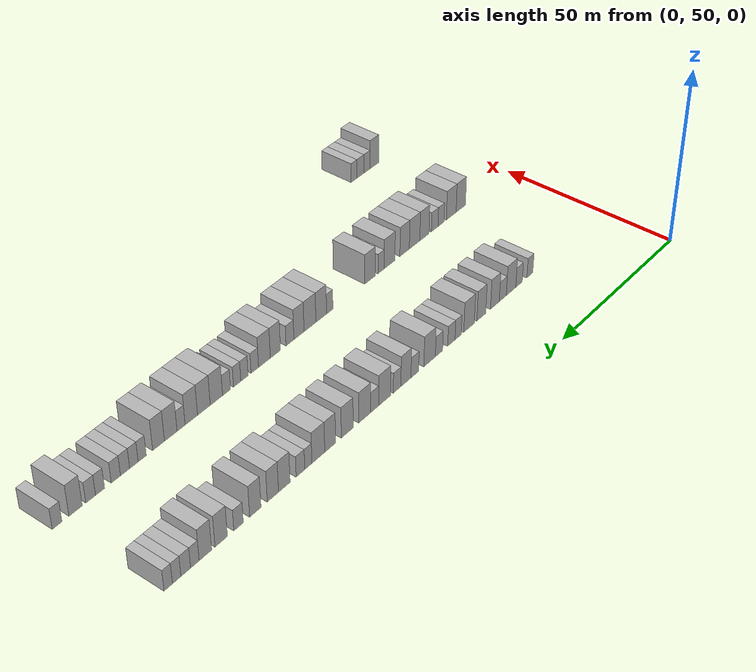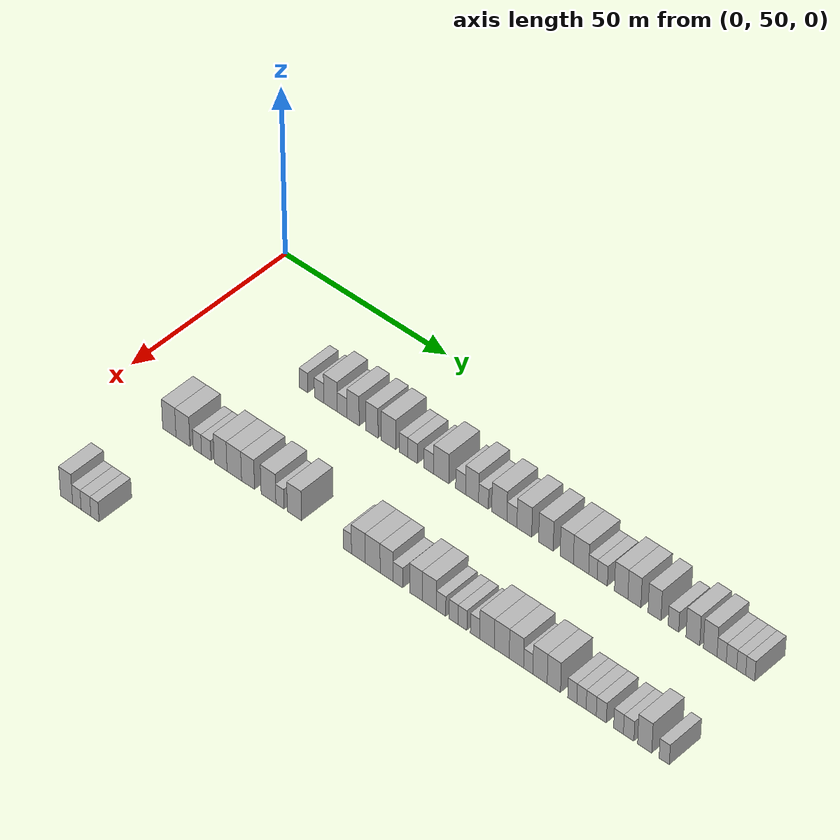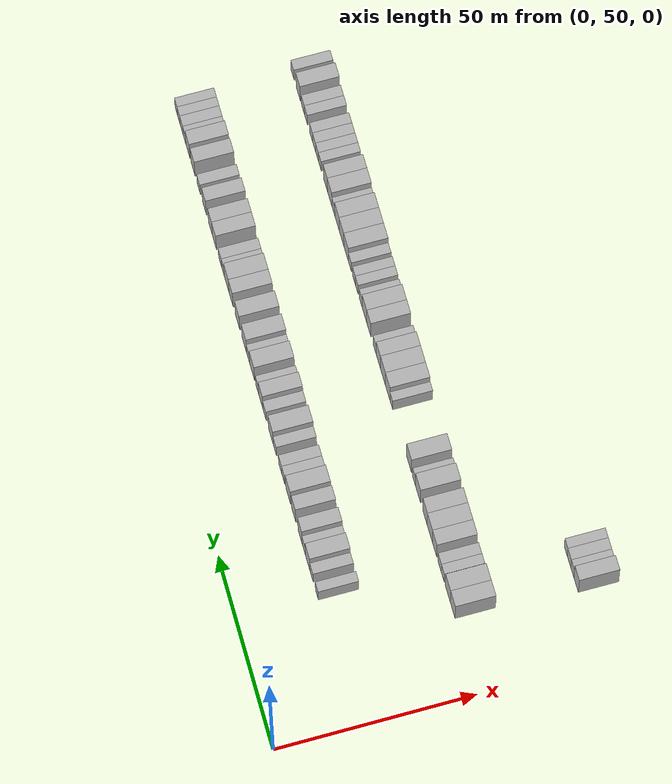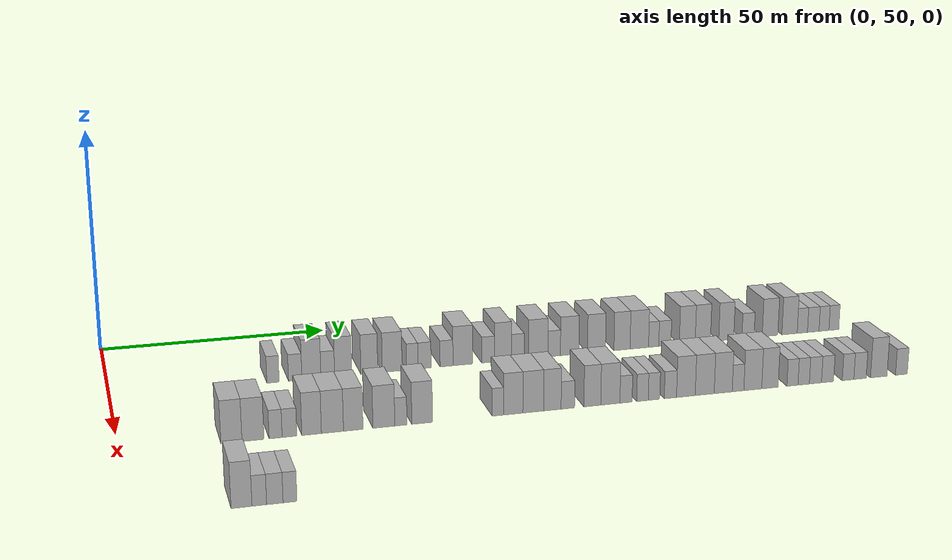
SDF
<sdf version="1.6">
 <world name="default">
  <model name="building_122">
   <static>1</static>
   <pose>25.0000 84.1562 0 0.000000 0.000000 0.000000</pose>
   <link name="link">
    <pose>0 0 3.00 0 0 0</pose>
    <collision name="collision"><geometry><box><size>10.0000 2.6257 6.0000</size></box></geometry></collision>
    <visual name="visual">
     <cast_shadows>0</cast_shadows>
     <geometry><box><size>10.0000 2.6257 6.0000</size></box></geometry>
     <material>
      <script>
       <uri>model://HANNAS_wall/materials/scripts</uri>
       <uri>model://HANNAS_wall/materials/textures</uri>
       <name>vrc/HANNAS_wall</name>
      </script>
     </material>
    </visual>
   </link>
  </model>
  <model name="building_123">
   <static>1</static>
   <pose>25.0000 88.9051 0 0.000000 0.000000 0.000000</pose>
   <link name="link">
    <pose>0 0 3.00 0 0 0</pose>
    <collision name="collision"><geometry><box><size>10.0000 2.8723 6.0000</size></box></geometry></collision>
    <visual name="visual">
     <cast_shadows>0</cast_shadows>
     <geometry><box><size>10.0000 2.8723 6.0000</size></box></geometry>
     <material>
      <script>
       <uri>model://HANNAS_wall/materials/scripts</uri>
       <uri>model://HANNAS_wall/materials/textures</uri>
       <name>vrc/HANNAS_wall</name>
      </script>
     </material>
    </visual>
   </link>
  </model>
  <model name="building_124">
   <static>1</static>
   <pose>25.0000 92.3896 0 0.000000 0.000000 0.000000</pose>
   <link name="link">
    <pose>0 0 4.50 0 0 0</pose>
    <collision name="collision"><geometry><box><size>10.0000 4.0966 9.0000</size></box></geometry></collision>
    <visual name="visual">
     <cast_shadows>0</cast_shadows>
     <geometry><box><size>10.0000 4.0966 9.0000</size></box></geometry>
     <material>
      <script>
       <uri>model://HANNAS_wall/materials/scripts</uri>
       <uri>model://HANNAS_wall/materials/textures</uri>
       <name>vrc/HANNAS_wall</name>
      </script>
     </material>
    </visual>
   </link>
  </model>
  <model name="building_125">
   <static>1</static>
   <pose>25.0000 95.9275 0 0.000000 0.000000 0.000000</pose>
   <link name="link">
    <pose>0 0 3.00 0 0 0</pose>
    <collision name="collision"><geometry><box><size>10.0000 2.9792 6.0000</size></box></geometry></collision>
    <visual name="visual">
     <cast_shadows>0</cast_shadows>
     <geometry><box><size>10.0000 2.9792 6.0000</size></box></geometry>
     <material>
      <script>
       <uri>model://HANNAS_wall/materials/scripts</uri>
       <uri>model://HANNAS_wall/materials/textures</uri>
       <name>vrc/HANNAS_wall</name>
      </script>
     </material>
    </visual>
   </link>
  </model>
  <model name="building_126">
   <static>1</static>
   <pose>25.0000 99.2682 0 0.000000 0.000000 0.000000</pose>
   <link name="link">
    <pose>0 0 4.50 0 0 0</pose>
    <collision name="collision"><geometry><box><size>10.0000 3.7021 9.0000</size></box></geometry></collision>
    <visual name="visual">
     <cast_shadows>0</cast_shadows>
     <geometry><box><size>10.0000 3.7021 9.0000</size></box></geometry>
     <material>
      <script>
       <uri>model://HANNAS_wall/materials/scripts</uri>
       <uri>model://HANNAS_wall/materials/textures</uri>
       <name>vrc/HANNAS_wall</name>
      </script>
     </material>
    </visual>
   </link>
  </model>
  <model name="building_127">
   <static>1</static>
   <pose>25.0000 104.9648 0 0.000000 0.000000 0.000000</pose>
   <link name="link">
    <pose>0 0 4.50 0 0 0</pose>
    <collision name="collision"><geometry><box><size>10.0000 3.6911 9.0000</size></box></geometry></collision>
    <visual name="visual">
     <cast_shadows>0</cast_shadows>
     <geometry><box><size>10.0000 3.6911 9.0000</size></box></geometry>
     <material>
      <script>
       <uri>model://HANNAS_wall/materials/scripts</uri>
       <uri>model://HANNAS_wall/materials/textures</uri>
       <name>vrc/HANNAS_wall</name>
      </script>
     </material>
    </visual>
   </link>
  </model>
  <model name="building_128">
   <static>1</static>
   <pose>25.0000 109.9829 0 0.000000 0.000000 0.000000</pose>
   <link name="link">
    <pose>0 0 4.50 0 0 0</pose>
    <collision name="collision"><geometry><box><size>10.0000 4.3452 9.0000</size></box></geometry></collision>
    <visual name="visual">
     <cast_shadows>0</cast_shadows>
     <geometry><box><size>10.0000 4.3452 9.0000</size></box></geometry>
     <material>
      <script>
       <uri>model://HANNAS_wall/materials/scripts</uri>
       <uri>model://HANNAS_wall/materials/textures</uri>
       <name>vrc/HANNAS_wall</name>
      </script>
     </material>
    </visual>
   </link>
  </model>
  <model name="building_129">
   <static>1</static>
   <pose>25.0000 114.4085 0 0.000000 0.000000 0.000000</pose>
   <link name="link">
    <pose>0 0 3.00 0 0 0</pose>
    <collision name="collision"><geometry><box><size>10.0000 2.5061 6.0000</size></box></geometry></collision>
    <visual name="visual">
     <cast_shadows>0</cast_shadows>
     <geometry><box><size>10.0000 2.5061 6.0000</size></box></geometry>
     <material>
      <script>
       <uri>model://HANNAS_wall/materials/scripts</uri>
       <uri>model://HANNAS_wall/materials/textures</uri>
       <name>vrc/HANNAS_wall</name>
      </script>
     </material>
    </visual>
   </link>
  </model>
  <model name="building_130">
   <static>1</static>
   <pose>25.0000 117.1323 0 0.000000 0.000000 0.000000</pose>
   <link name="link">
    <pose>0 0 3.00 0 0 0</pose>
    <collision name="collision"><geometry><box><size>10.0000 2.9415 6.0000</size></box></geometry></collision>
    <visual name="visual">
     <cast_shadows>0</cast_shadows>
     <geometry><box><size>10.0000 2.9415 6.0000</size></box></geometry>
     <material>
      <script>
       <uri>model://HANNAS_wall/materials/scripts</uri>
       <uri>model://HANNAS_wall/materials/textures</uri>
       <name>vrc/HANNAS_wall</name>
      </script>
     </material>
    </visual>
   </link>
  </model>
  <model name="building_131">
   <static>1</static>
   <pose>25.0000 122.0449 0 0.000000 0.000000 0.000000</pose>
   <link name="link">
    <pose>0 0 3.00 0 0 0</pose>
    <collision name="collision"><geometry><box><size>10.0000 2.8836 6.0000</size></box></geometry></collision>
    <visual name="visual">
     <cast_shadows>0</cast_shadows>
     <geometry><box><size>10.0000 2.8836 6.0000</size></box></geometry>
     <material>
      <script>
       <uri>model://HANNAS_wall/materials/scripts</uri>
       <uri>model://HANNAS_wall/materials/textures</uri>
       <name>vrc/HANNAS_wall</name>
      </script>
     </material>
    </visual>
   </link>
  </model>
  <model name="building_132">
   <static>1</static>
   <pose>25.0000 125.7158 0 0.000000 0.000000 0.000000</pose>
   <link name="link">
    <pose>0 0 4.50 0 0 0</pose>
    <collision name="collision"><geometry><box><size>10.0000 4.4583 9.0000</size></box></geometry></collision>
    <visual name="visual">
     <cast_shadows>0</cast_shadows>
     <geometry><box><size>10.0000 4.4583 9.0000</size></box></geometry>
     <material>
      <script>
       <uri>model://HANNAS_wall/materials/scripts</uri>
       <uri>model://HANNAS_wall/materials/textures</uri>
       <name>vrc/HANNAS_wall</name>
      </script>
     </material>
    </visual>
   </link>
  </model>
  <model name="building_133">
   <static>1</static>
   <pose>25.0000 131.4169 0 0.000000 0.000000 0.000000</pose>
   <link name="link">
    <pose>0 0 3.00 0 0 0</pose>
    <collision name="collision"><geometry><box><size>10.0000 2.9439 6.0000</size></box></geometry></collision>
    <visual name="visual">
     <cast_shadows>0</cast_shadows>
     <geometry><box><size>10.0000 2.9439 6.0000</size></box></geometry>
     <material>
      <script>
       <uri>model://HANNAS_wall/materials/scripts</uri>
       <uri>model://HANNAS_wall/materials/textures</uri>
       <name>vrc/HANNAS_wall</name>
      </script>
     </material>
    </visual>
   </link>
  </model>
  <model name="building_134">
   <static>1</static>
   <pose>25.0000 134.8020 0 0.000000 0.000000 0.000000</pose>
   <link name="link">
    <pose>0 0 4.50 0 0 0</pose>
    <collision name="collision"><geometry><box><size>10.0000 3.8262 9.0000</size></box></geometry></collision>
    <visual name="visual">
     <cast_shadows>0</cast_shadows>
     <geometry><box><size>10.0000 3.8262 9.0000</size></box></geometry>
     <material>
      <script>
       <uri>model://HANNAS_wall/materials/scripts</uri>
       <uri>model://HANNAS_wall/materials/textures</uri>
       <name>vrc/HANNAS_wall</name>
      </script>
     </material>
    </visual>
   </link>
  </model>
  <model name="building_135">
   <static>1</static>
   <pose>25.0000 138.1453 0 0.000000 0.000000 0.000000</pose>
   <link name="link">
    <pose>0 0 3.00 0 0 0</pose>
    <collision name="collision"><geometry><box><size>10.0000 2.8604 6.0000</size></box></geometry></collision>
    <visual name="visual">
     <cast_shadows>0</cast_shadows>
     <geometry><box><size>10.0000 2.8604 6.0000</size></box></geometry>
     <material>
      <script>
       <uri>model://HANNAS_wall/materials/scripts</uri>
       <uri>model://HANNAS_wall/materials/textures</uri>
       <name>vrc/HANNAS_wall</name>
      </script>
     </material>
    </visual>
   </link>
  </model>
  <model name="building_136">
   <static>1</static>
   <pose>25.0000 142.7866 0 0.000000 0.000000 0.000000</pose>
   <link name="link">
    <pose>0 0 4.50 0 0 0</pose>
    <collision name="collision"><geometry><box><size>10.0000 4.4223 9.0000</size></box></geometry></collision>
    <visual name="visual">
     <cast_shadows>0</cast_shadows>
     <geometry><box><size>10.0000 4.4223 9.0000</size></box></geometry>
     <material>
      <script>
       <uri>model://HANNAS_wall/materials/scripts</uri>
       <uri>model://HANNAS_wall/materials/textures</uri>
       <name>vrc/HANNAS_wall</name>
      </script>
     </material>
    </visual>
   </link>
  </model>
  <model name="building_137">
   <static>1</static>
   <pose>25.0000 146.4491 0 0.000000 0.000000 0.000000</pose>
   <link name="link">
    <pose>0 0 3.00 0 0 0</pose>
    <collision name="collision"><geometry><box><size>10.0000 2.9027 6.0000</size></box></geometry></collision>
    <visual name="visual">
     <cast_shadows>0</cast_shadows>
     <geometry><box><size>10.0000 2.9027 6.0000</size></box></geometry>
     <material>
      <script>
       <uri>model://HANNAS_wall/materials/scripts</uri>
       <uri>model://HANNAS_wall/materials/textures</uri>
       <name>vrc/HANNAS_wall</name>
      </script>
     </material>
    </visual>
   </link>
  </model>
  <model name="building_138">
   <static>1</static>
   <pose>25.0000 150.0336 0 0.000000 0.000000 0.000000</pose>
   <link name="link">
    <pose>0 0 4.50 0 0 0</pose>
    <collision name="collision"><geometry><box><size>10.0000 4.2664 9.0000</size></box></geometry></collision>
    <visual name="visual">
     <cast_shadows>0</cast_shadows>
     <geometry><box><size>10.0000 4.2664 9.0000</size></box></geometry>
     <material>
      <script>
       <uri>model://HANNAS_wall/materials/scripts</uri>
       <uri>model://HANNAS_wall/materials/textures</uri>
       <name>vrc/HANNAS_wall</name>
      </script>
     </material>
    </visual>
   </link>
  </model>
  <model name="building_139">
   <static>1</static>
   <pose>25.0000 156.2660 0 0.000000 0.000000 0.000000</pose>
   <link name="link">
    <pose>0 0 4.50 0 0 0</pose>
    <collision name="collision"><geometry><box><size>10.0000 4.1983 9.0000</size></box></geometry></collision>
    <visual name="visual">
     <cast_shadows>0</cast_shadows>
     <geometry><box><size>10.0000 4.1983 9.0000</size></box></geometry>
     <material>
      <script>
       <uri>model://HANNAS_wall/materials/scripts</uri>
       <uri>model://HANNAS_wall/materials/textures</uri>
       <name>vrc/HANNAS_wall</name>
      </script>
     </material>
    </visual>
   </link>
  </model>
  <model name="building_140">
   <static>1</static>
   <pose>25.0000 162.2489 0 0.000000 0.000000 0.000000</pose>
   <link name="link">
    <pose>0 0 4.50 0 0 0</pose>
    <collision name="collision"><geometry><box><size>10.0000 3.7675 9.0000</size></box></geometry></collision>
    <visual name="visual">
     <cast_shadows>0</cast_shadows>
     <geometry><box><size>10.0000 3.7675 9.0000</size></box></geometry>
     <material>
      <script>
       <uri>model://HANNAS_wall/materials/scripts</uri>
       <uri>model://HANNAS_wall/materials/textures</uri>
       <name>vrc/HANNAS_wall</name>
      </script>
     </material>
    </visual>
   </link>
  </model>
  <model name="building_141">
   <static>1</static>
   <pose>25.0000 166.3212 0 0.000000 0.000000 0.000000</pose>
   <link name="link">
    <pose>0 0 4.50 0 0 0</pose>
    <collision name="collision"><geometry><box><size>10.0000 4.3771 9.0000</size></box></geometry></collision>
    <visual name="visual">
     <cast_shadows>0</cast_shadows>
     <geometry><box><size>10.0000 4.3771 9.0000</size></box></geometry>
     <material>
      <script>
       <uri>model://HANNAS_wall/materials/scripts</uri>
       <uri>model://HANNAS_wall/materials/textures</uri>
       <name>vrc/HANNAS_wall</name>
      </script>
     </material>
    </visual>
   </link>
  </model>
  <model name="building_142">
   <static>1</static>
   <pose>25.0000 169.7186 0 0.000000 0.000000 0.000000</pose>
   <link name="link">
    <pose>0 0 3.00 0 0 0</pose>
    <collision name="collision"><geometry><box><size>10.0000 2.4177 6.0000</size></box></geometry></collision>
    <visual name="visual">
     <cast_shadows>0</cast_shadows>
     <geometry><box><size>10.0000 2.4177 6.0000</size></box></geometry>
     <material>
      <script>
       <uri>model://HANNAS_wall/materials/scripts</uri>
       <uri>model://HANNAS_wall/materials/textures</uri>
       <name>vrc/HANNAS_wall</name>
      </script>
     </material>
    </visual>
   </link>
  </model>
  <model name="building_143">
   <static>1</static>
   <pose>25.0000 172.3714 0 0.000000 0.000000 0.000000</pose>
   <link name="link">
    <pose>0 0 3.00 0 0 0</pose>
    <collision name="collision"><geometry><box><size>10.0000 2.8878 6.0000</size></box></geometry></collision>
    <visual name="visual">
     <cast_shadows>0</cast_shadows>
     <geometry><box><size>10.0000 2.8878 6.0000</size></box></geometry>
     <material>
      <script>
       <uri>model://HANNAS_wall/materials/scripts</uri>
       <uri>model://HANNAS_wall/materials/textures</uri>
       <name>vrc/HANNAS_wall</name>
      </script>
     </material>
    </visual>
   </link>
  </model>
  <model name="building_144">
   <static>1</static>
   <pose>25.0000 177.7145 0 0.000000 0.000000 0.000000</pose>
   <link name="link">
    <pose>0 0 4.50 0 0 0</pose>
    <collision name="collision"><geometry><box><size>10.0000 3.7985 9.0000</size></box></geometry></collision>
    <visual name="visual">
     <cast_shadows>0</cast_shadows>
     <geometry><box><size>10.0000 3.7985 9.0000</size></box></geometry>
     <material>
      <script>
       <uri>model://HANNAS_wall/materials/scripts</uri>
       <uri>model://HANNAS_wall/materials/textures</uri>
       <name>vrc/HANNAS_wall</name>
      </script>
     </material>
    </visual>
   </link>
  </model>
  <model name="building_145">
   <static>1</static>
   <pose>25.0000 181.4431 0 0.000000 0.000000 0.000000</pose>
   <link name="link">
    <pose>0 0 4.50 0 0 0</pose>
    <collision name="collision"><geometry><box><size>10.0000 3.6586 9.0000</size></box></geometry></collision>
    <visual name="visual">
     <cast_shadows>0</cast_shadows>
     <geometry><box><size>10.0000 3.6586 9.0000</size></box></geometry>
     <material>
      <script>
       <uri>model://HANNAS_wall/materials/scripts</uri>
       <uri>model://HANNAS_wall/materials/textures</uri>
       <name>vrc/HANNAS_wall</name>
      </script>
     </material>
    </visual>
   </link>
  </model>
  <model name="building_146">
   <static>1</static>
   <pose>25.0000 187.0844 0 0.000000 0.000000 0.000000</pose>
   <link name="link">
    <pose>0 0 4.50 0 0 0</pose>
    <collision name="collision"><geometry><box><size>10.0000 3.6240 9.0000</size></box></geometry></collision>
    <visual name="visual">
     <cast_shadows>0</cast_shadows>
     <geometry><box><size>10.0000 3.6240 9.0000</size></box></geometry>
     <material>
      <script>
       <uri>model://HANNAS_wall/materials/scripts</uri>
       <uri>model://HANNAS_wall/materials/textures</uri>
       <name>vrc/HANNAS_wall</name>
      </script>
     </material>
    </visual>
   </link>
  </model>
  <model name="building_147">
   <static>1</static>
   <pose>25.0000 192.3741 0 0.000000 0.000000 0.000000</pose>
   <link name="link">
    <pose>0 0 3.00 0 0 0</pose>
    <collision name="collision"><geometry><box><size>10.0000 2.9554 6.0000</size></box></geometry></collision>
    <visual name="visual">
     <cast_shadows>0</cast_shadows>
     <geometry><box><size>10.0000 2.9554 6.0000</size></box></geometry>
     <material>
      <script>
       <uri>model://HANNAS_wall/materials/scripts</uri>
       <uri>model://HANNAS_wall/materials/textures</uri>
       <name>vrc/HANNAS_wall</name>
      </script>
     </material>
    </visual>
   </link>
  </model>
  <model name="building_148">
   <static>1</static>
   <pose>25.0000 197.7611 0 0.000000 0.000000 0.000000</pose>
   <link name="link">
    <pose>0 0 4.50 0 0 0</pose>
    <collision name="collision"><geometry><box><size>10.0000 3.8187 9.0000</size></box></geometry></collision>
    <visual name="visual">
     <cast_shadows>0</cast_shadows>
     <geometry><box><size>10.0000 3.8187 9.0000</size></box></geometry>
     <material>
      <script>
       <uri>model://HANNAS_wall/materials/scripts</uri>
       <uri>model://HANNAS_wall/materials/textures</uri>
       <name>vrc/HANNAS_wall</name>
      </script>
     </material>
    </visual>
   </link>
  </model>
  <model name="building_149">
   <static>1</static>
   <pose>25.0000 202.5559 0 0.000000 0.000000 0.000000</pose>
   <link name="link">
    <pose>0 0 4.50 0 0 0</pose>
    <collision name="collision"><geometry><box><size>10.0000 3.7707 9.0000</size></box></geometry></collision>
    <visual name="visual">
     <cast_shadows>0</cast_shadows>
     <geometry><box><size>10.0000 3.7707 9.0000</size></box></geometry>
     <material>
      <script>
       <uri>model://HANNAS_wall/materials/scripts</uri>
       <uri>model://HANNAS_wall/materials/textures</uri>
       <name>vrc/HANNAS_wall</name>
      </script>
     </material>
    </visual>
   </link>
  </model>
  <model name="building_150">
   <static>1</static>
   <pose>25.0000 205.7154 0 0.000000 0.000000 0.000000</pose>
   <link name="link">
    <pose>0 0 3.00 0 0 0</pose>
    <collision name="collision"><geometry><box><size>10.0000 2.5484 6.0000</size></box></geometry></collision>
    <visual name="visual">
     <cast_shadows>0</cast_shadows>
     <geometry><box><size>10.0000 2.5484 6.0000</size></box></geometry>
     <material>
      <script>
       <uri>model://HANNAS_wall/materials/scripts</uri>
       <uri>model://HANNAS_wall/materials/textures</uri>
       <name>vrc/HANNAS_wall</name>
      </script>
     </material>
    </visual>
   </link>
  </model>
  <model name="building_151">
   <static>1</static>
   <pose>25.0000 208.4205 0 0.000000 0.000000 0.000000</pose>
   <link name="link">
    <pose>0 0 3.00 0 0 0</pose>
    <collision name="collision"><geometry><box><size>10.0000 2.8617 6.0000</size></box></geometry></collision>
    <visual name="visual">
     <cast_shadows>0</cast_shadows>
     <geometry><box><size>10.0000 2.8617 6.0000</size></box></geometry>
     <material>
      <script>
       <uri>model://HANNAS_wall/materials/scripts</uri>
       <uri>model://HANNAS_wall/materials/textures</uri>
       <name>vrc/HANNAS_wall</name>
      </script>
     </material>
    </visual>
   </link>
  </model>
  <model name="building_152">
   <static>1</static>
   <pose>25.0000 211.0842 0 0.000000 0.000000 0.000000</pose>
   <link name="link">
    <pose>0 0 3.00 0 0 0</pose>
    <collision name="collision"><geometry><box><size>10.0000 2.4657 6.0000</size></box></geometry></collision>
    <visual name="visual">
     <cast_shadows>0</cast_shadows>
     <geometry><box><size>10.0000 2.4657 6.0000</size></box></geometry>
     <material>
      <script>
       <uri>model://HANNAS_wall/materials/scripts</uri>
       <uri>model://HANNAS_wall/materials/textures</uri>
       <name>vrc/HANNAS_wall</name>
      </script>
     </material>
    </visual>
   </link>
  </model>
  <model name="building_153">
   <static>1</static>
   <pose>25.0000 213.5490 0 0.000000 0.000000 0.000000</pose>
   <link name="link">
    <pose>0 0 3.00 0 0 0</pose>
    <collision name="collision"><geometry><box><size>10.0000 2.4639 6.0000</size></box></geometry></collision>
    <visual name="visual">
     <cast_shadows>0</cast_shadows>
     <geometry><box><size>10.0000 2.4639 6.0000</size></box></geometry>
     <material>
      <script>
       <uri>model://HANNAS_wall/materials/scripts</uri>
       <uri>model://HANNAS_wall/materials/textures</uri>
       <name>vrc/HANNAS_wall</name>
      </script>
     </material>
    </visual>
   </link>
  </model>
  <model name="building_354">
   <static>1</static>
   <pose>55.0000 71.6878 0 0.000000 0.000000 0.000000</pose>
   <link name="link">
    <pose>0 0 4.50 0 0 0</pose>
    <collision name="collision"><geometry><box><size>10.0000 4.1245 9.0000</size></box></geometry></collision>
    <visual name="visual">
     <cast_shadows>0</cast_shadows>
     <geometry><box><size>10.0000 4.1245 9.0000</size></box></geometry>
     <material>
      <script>
       <uri>model://HANNAS_wall/materials/scripts</uri>
       <uri>model://HANNAS_wall/materials/textures</uri>
       <name>vrc/HANNAS_wall</name>
      </script>
     </material>
    </visual>
   </link>
  </model>
  <model name="building_355">
   <static>1</static>
   <pose>55.0000 75.9134 0 0.000000 0.000000 0.000000</pose>
   <link name="link">
    <pose>0 0 4.50 0 0 0</pose>
    <collision name="collision"><geometry><box><size>10.0000 4.3267 9.0000</size></box></geometry></collision>
    <visual name="visual">
     <cast_shadows>0</cast_shadows>
     <geometry><box><size>10.0000 4.3267 9.0000</size></box></geometry>
     <material>
      <script>
       <uri>model://HANNAS_wall/materials/scripts</uri>
       <uri>model://HANNAS_wall/materials/textures</uri>
       <name>vrc/HANNAS_wall</name>
      </script>
     </material>
    </visual>
   </link>
  </model>
  <model name="building_356">
   <static>1</static>
   <pose>55.0000 80.3630 0 0.000000 0.000000 0.000000</pose>
   <link name="link">
    <pose>0 0 3.00 0 0 0</pose>
    <collision name="collision"><geometry><box><size>10.0000 2.5725 6.0000</size></box></geometry></collision>
    <visual name="visual">
     <cast_shadows>0</cast_shadows>
     <geometry><box><size>10.0000 2.5725 6.0000</size></box></geometry>
     <material>
      <script>
       <uri>model://HANNAS_wall/materials/scripts</uri>
       <uri>model://HANNAS_wall/materials/textures</uri>
       <name>vrc/HANNAS_wall</name>
      </script>
     </material>
    </visual>
   </link>
  </model>
  <model name="building_357">
   <static>1</static>
   <pose>55.0000 83.1028 0 0.000000 0.000000 0.000000</pose>
   <link name="link">
    <pose>0 0 3.00 0 0 0</pose>
    <collision name="collision"><geometry><box><size>10.0000 2.9072 6.0000</size></box></geometry></collision>
    <visual name="visual">
     <cast_shadows>0</cast_shadows>
     <geometry><box><size>10.0000 2.9072 6.0000</size></box></geometry>
     <material>
      <script>
       <uri>model://HANNAS_wall/materials/scripts</uri>
       <uri>model://HANNAS_wall/materials/textures</uri>
       <name>vrc/HANNAS_wall</name>
      </script>
     </material>
    </visual>
   </link>
  </model>
  <model name="building_358">
   <static>1</static>
   <pose>55.0000 87.5106 0 0.000000 0.000000 0.000000</pose>
   <link name="link">
    <pose>0 0 4.50 0 0 0</pose>
    <collision name="collision"><geometry><box><size>10.0000 3.9083 9.0000</size></box></geometry></collision>
    <visual name="visual">
     <cast_shadows>0</cast_shadows>
     <geometry><box><size>10.0000 3.9083 9.0000</size></box></geometry>
     <material>
      <script>
       <uri>model://HANNAS_wall/materials/scripts</uri>
       <uri>model://HANNAS_wall/materials/textures</uri>
       <name>vrc/HANNAS_wall</name>
      </script>
     </material>
    </visual>
   </link>
  </model>
  <model name="building_359">
   <static>1</static>
   <pose>55.0000 91.6807 0 0.000000 0.000000 0.000000</pose>
   <link name="link">
    <pose>0 0 4.50 0 0 0</pose>
    <collision name="collision"><geometry><box><size>10.0000 4.4318 9.0000</size></box></geometry></collision>
    <visual name="visual">
     <cast_shadows>0</cast_shadows>
     <geometry><box><size>10.0000 4.4318 9.0000</size></box></geometry>
     <material>
      <script>
       <uri>model://HANNAS_wall/materials/scripts</uri>
       <uri>model://HANNAS_wall/materials/textures</uri>
       <name>vrc/HANNAS_wall</name>
      </script>
     </material>
    </visual>
   </link>
  </model>
  <model name="building_360">
   <static>1</static>
   <pose>55.0000 95.8655 0 0.000000 0.000000 0.000000</pose>
   <link name="link">
    <pose>0 0 4.50 0 0 0</pose>
    <collision name="collision"><geometry><box><size>10.0000 3.9377 9.0000</size></box></geometry></collision>
    <visual name="visual">
     <cast_shadows>0</cast_shadows>
     <geometry><box><size>10.0000 3.9377 9.0000</size></box></geometry>
     <material>
      <script>
       <uri>model://HANNAS_wall/materials/scripts</uri>
       <uri>model://HANNAS_wall/materials/textures</uri>
       <name>vrc/HANNAS_wall</name>
      </script>
     </material>
    </visual>
   </link>
  </model>
  <model name="building_361">
   <static>1</static>
   <pose>55.0000 102.0599 0 0.000000 0.000000 0.000000</pose>
   <link name="link">
    <pose>0 0 4.50 0 0 0</pose>
    <collision name="collision"><geometry><box><size>10.0000 4.4511 9.0000</size></box></geometry></collision>
    <visual name="visual">
     <cast_shadows>0</cast_shadows>
     <geometry><box><size>10.0000 4.4511 9.0000</size></box></geometry>
     <material>
      <script>
       <uri>model://HANNAS_wall/materials/scripts</uri>
       <uri>model://HANNAS_wall/materials/textures</uri>
       <name>vrc/HANNAS_wall</name>
      </script>
     </material>
    </visual>
   </link>
  </model>
  <model name="building_362">
   <static>1</static>
   <pose>55.0000 105.5211 0 0.000000 0.000000 0.000000</pose>
   <link name="link">
    <pose>0 0 3.00 0 0 0</pose>
    <collision name="collision"><geometry><box><size>10.0000 2.4714 6.0000</size></box></geometry></collision>
    <visual name="visual">
     <cast_shadows>0</cast_shadows>
     <geometry><box><size>10.0000 2.4714 6.0000</size></box></geometry>
     <material>
      <script>
       <uri>model://HANNAS_wall/materials/scripts</uri>
       <uri>model://HANNAS_wall/materials/textures</uri>
       <name>vrc/HANNAS_wall</name>
      </script>
     </material>
    </visual>
   </link>
  </model>
  <model name="building_363">
   <static>1</static>
   <pose>55.0000 109.8866 0 0.000000 0.000000 0.000000</pose>
   <link name="link">
    <pose>0 0 4.50 0 0 0</pose>
    <collision name="collision"><geometry><box><size>10.0000 4.2597 9.0000</size></box></geometry></collision>
    <visual name="visual">
     <cast_shadows>0</cast_shadows>
     <geometry><box><size>10.0000 4.2597 9.0000</size></box></geometry>
     <material>
      <script>
       <uri>model://HANNAS_wall/materials/scripts</uri>
       <uri>model://HANNAS_wall/materials/textures</uri>
       <name>vrc/HANNAS_wall</name>
      </script>
     </material>
    </visual>
   </link>
  </model>
  <model name="building_364">
   <static>1</static>
   <pose>55.0000 125.6384 0 0.000000 0.000000 0.000000</pose>
   <link name="link">
    <pose>0 0 3.00 0 0 0</pose>
    <collision name="collision"><geometry><box><size>10.0000 2.4146 6.0000</size></box></geometry></collision>
    <visual name="visual">
     <cast_shadows>0</cast_shadows>
     <geometry><box><size>10.0000 2.4146 6.0000</size></box></geometry>
     <material>
      <script>
       <uri>model://HANNAS_wall/materials/scripts</uri>
       <uri>model://HANNAS_wall/materials/textures</uri>
       <name>vrc/HANNAS_wall</name>
      </script>
     </material>
    </visual>
   </link>
  </model>
  <model name="building_365">
   <static>1</static>
   <pose>55.0000 128.8602 0 0.000000 0.000000 0.000000</pose>
   <link name="link">
    <pose>0 0 4.50 0 0 0</pose>
    <collision name="collision"><geometry><box><size>10.0000 4.0290 9.0000</size></box></geometry></collision>
    <visual name="visual">
     <cast_shadows>0</cast_shadows>
     <geometry><box><size>10.0000 4.0290 9.0000</size></box></geometry>
     <material>
      <script>
       <uri>model://HANNAS_wall/materials/scripts</uri>
       <uri>model://HANNAS_wall/materials/textures</uri>
       <name>vrc/HANNAS_wall</name>
      </script>
     </material>
    </visual>
   </link>
  </model>
  <model name="building_366">
   <static>1</static>
   <pose>55.0000 133.0785 0 0.000000 0.000000 0.000000</pose>
   <link name="link">
    <pose>0 0 4.50 0 0 0</pose>
    <collision name="collision"><geometry><box><size>10.0000 4.4076 9.0000</size></box></geometry></collision>
    <visual name="visual">
     <cast_shadows>0</cast_shadows>
     <geometry><box><size>10.0000 4.4076 9.0000</size></box></geometry>
     <material>
      <script>
       <uri>model://HANNAS_wall/materials/scripts</uri>
       <uri>model://HANNAS_wall/materials/textures</uri>
       <name>vrc/HANNAS_wall</name>
      </script>
     </material>
    </visual>
   </link>
  </model>
  <model name="building_367">
   <static>1</static>
   <pose>55.0000 137.1438 0 0.000000 0.000000 0.000000</pose>
   <link name="link">
    <pose>0 0 4.50 0 0 0</pose>
    <collision name="collision"><geometry><box><size>10.0000 3.7231 9.0000</size></box></geometry></collision>
    <visual name="visual">
     <cast_shadows>0</cast_shadows>
     <geometry><box><size>10.0000 3.7231 9.0000</size></box></geometry>
     <material>
      <script>
       <uri>model://HANNAS_wall/materials/scripts</uri>
       <uri>model://HANNAS_wall/materials/textures</uri>
       <name>vrc/HANNAS_wall</name>
      </script>
     </material>
    </visual>
   </link>
  </model>
  <model name="building_368">
   <static>1</static>
   <pose>55.0000 140.4481 0 0.000000 0.000000 0.000000</pose>
   <link name="link">
    <pose>0 0 3.00 0 0 0</pose>
    <collision name="collision"><geometry><box><size>10.0000 2.8855 6.0000</size></box></geometry></collision>
    <visual name="visual">
     <cast_shadows>0</cast_shadows>
     <geometry><box><size>10.0000 2.8855 6.0000</size></box></geometry>
     <material>
      <script>
       <uri>model://HANNAS_wall/materials/scripts</uri>
       <uri>model://HANNAS_wall/materials/textures</uri>
       <name>vrc/HANNAS_wall</name>
      </script>
     </material>
    </visual>
   </link>
  </model>
  <model name="building_369">
   <static>1</static>
   <pose>55.0000 145.7088 0 0.000000 0.000000 0.000000</pose>
   <link name="link">
    <pose>0 0 4.50 0 0 0</pose>
    <collision name="collision"><geometry><box><size>10.0000 3.6359 9.0000</size></box></geometry></collision>
    <visual name="visual">
     <cast_shadows>0</cast_shadows>
     <geometry><box><size>10.0000 3.6359 9.0000</size></box></geometry>
     <material>
      <script>
       <uri>model://HANNAS_wall/materials/scripts</uri>
       <uri>model://HANNAS_wall/materials/textures</uri>
       <name>vrc/HANNAS_wall</name>
      </script>
     </material>
    </visual>
   </link>
  </model>
  <model name="building_370">
   <static>1</static>
   <pose>55.0000 149.6013 0 0.000000 0.000000 0.000000</pose>
   <link name="link">
    <pose>0 0 4.50 0 0 0</pose>
    <collision name="collision"><geometry><box><size>10.0000 4.1490 9.0000</size></box></geometry></collision>
    <visual name="visual">
     <cast_shadows>0</cast_shadows>
     <geometry><box><size>10.0000 4.1490 9.0000</size></box></geometry>
     <material>
      <script>
       <uri>model://HANNAS_wall/materials/scripts</uri>
       <uri>model://HANNAS_wall/materials/textures</uri>
       <name>vrc/HANNAS_wall</name>
      </script>
     </material>
    </visual>
   </link>
  </model>
  <model name="building_371">
   <static>1</static>
   <pose>55.0000 153.0036 0 0.000000 0.000000 0.000000</pose>
   <link name="link">
    <pose>0 0 3.00 0 0 0</pose>
    <collision name="collision"><geometry><box><size>10.0000 2.6556 6.0000</size></box></geometry></collision>
    <visual name="visual">
     <cast_shadows>0</cast_shadows>
     <geometry><box><size>10.0000 2.6556 6.0000</size></box></geometry>
     <material>
      <script>
       <uri>model://HANNAS_wall/materials/scripts</uri>
       <uri>model://HANNAS_wall/materials/textures</uri>
       <name>vrc/HANNAS_wall</name>
      </script>
     </material>
    </visual>
   </link>
  </model>
  <model name="building_372">
   <static>1</static>
   <pose>55.0000 156.5957 0 0.000000 0.000000 0.000000</pose>
   <link name="link">
    <pose>0 0 3.00 0 0 0</pose>
    <collision name="collision"><geometry><box><size>10.0000 2.5285 6.0000</size></box></geometry></collision>
    <visual name="visual">
     <cast_shadows>0</cast_shadows>
     <geometry><box><size>10.0000 2.5285 6.0000</size></box></geometry>
     <material>
      <script>
       <uri>model://HANNAS_wall/materials/scripts</uri>
       <uri>model://HANNAS_wall/materials/textures</uri>
       <name>vrc/HANNAS_wall</name>
      </script>
     </material>
    </visual>
   </link>
  </model>
  <model name="building_373">
   <static>1</static>
   <pose>55.0000 159.1207 0 0.000000 0.000000 0.000000</pose>
   <link name="link">
    <pose>0 0 3.00 0 0 0</pose>
    <collision name="collision"><geometry><box><size>10.0000 2.5214 6.0000</size></box></geometry></collision>
    <visual name="visual">
     <cast_shadows>0</cast_shadows>
     <geometry><box><size>10.0000 2.5214 6.0000</size></box></geometry>
     <material>
      <script>
       <uri>model://HANNAS_wall/materials/scripts</uri>
       <uri>model://HANNAS_wall/materials/textures</uri>
       <name>vrc/HANNAS_wall</name>
      </script>
     </material>
    </visual>
   </link>
  </model>
  <model name="building_374">
   <static>1</static>
   <pose>55.0000 162.7316 0 0.000000 0.000000 0.000000</pose>
   <link name="link">
    <pose>0 0 3.00 0 0 0</pose>
    <collision name="collision"><geometry><box><size>10.0000 2.7003 6.0000</size></box></geometry></collision>
    <visual name="visual">
     <cast_shadows>0</cast_shadows>
     <geometry><box><size>10.0000 2.7003 6.0000</size></box></geometry>
     <material>
      <script>
       <uri>model://HANNAS_wall/materials/scripts</uri>
       <uri>model://HANNAS_wall/materials/textures</uri>
       <name>vrc/HANNAS_wall</name>
      </script>
     </material>
    </visual>
   </link>
  </model>
  <model name="building_375">
   <static>1</static>
   <pose>55.0000 166.1498 0 0.000000 0.000000 0.000000</pose>
   <link name="link">
    <pose>0 0 4.50 0 0 0</pose>
    <collision name="collision"><geometry><box><size>10.0000 4.1362 9.0000</size></box></geometry></collision>
    <visual name="visual">
     <cast_shadows>0</cast_shadows>
     <geometry><box><size>10.0000 4.1362 9.0000</size></box></geometry>
     <material>
      <script>
       <uri>model://HANNAS_wall/materials/scripts</uri>
       <uri>model://HANNAS_wall/materials/textures</uri>
       <name>vrc/HANNAS_wall</name>
      </script>
     </material>
    </visual>
   </link>
  </model>
  <model name="building_376">
   <static>1</static>
   <pose>55.0000 170.3279 0 0.000000 0.000000 0.000000</pose>
   <link name="link">
    <pose>0 0 4.50 0 0 0</pose>
    <collision name="collision"><geometry><box><size>10.0000 4.2200 9.0000</size></box></geometry></collision>
    <visual name="visual">
     <cast_shadows>0</cast_shadows>
     <geometry><box><size>10.0000 4.2200 9.0000</size></box></geometry>
     <material>
      <script>
       <uri>model://HANNAS_wall/materials/scripts</uri>
       <uri>model://HANNAS_wall/materials/textures</uri>
       <name>vrc/HANNAS_wall</name>
      </script>
     </material>
    </visual>
   </link>
  </model>
  <model name="building_377">
   <static>1</static>
   <pose>55.0000 174.4582 0 0.000000 0.000000 0.000000</pose>
   <link name="link">
    <pose>0 0 4.50 0 0 0</pose>
    <collision name="collision"><geometry><box><size>10.0000 4.0404 9.0000</size></box></geometry></collision>
    <visual name="visual">
     <cast_shadows>0</cast_shadows>
     <geometry><box><size>10.0000 4.0404 9.0000</size></box></geometry>
     <material>
      <script>
       <uri>model://HANNAS_wall/materials/scripts</uri>
       <uri>model://HANNAS_wall/materials/textures</uri>
       <name>vrc/HANNAS_wall</name>
      </script>
     </material>
    </visual>
   </link>
  </model>
  <model name="building_378">
   <static>1</static>
   <pose>55.0000 177.7812 0 0.000000 0.000000 0.000000</pose>
   <link name="link">
    <pose>0 0 3.00 0 0 0</pose>
    <collision name="collision"><geometry><box><size>10.0000 2.6057 6.0000</size></box></geometry></collision>
    <visual name="visual">
     <cast_shadows>0</cast_shadows>
     <geometry><box><size>10.0000 2.6057 6.0000</size></box></geometry>
     <material>
      <script>
       <uri>model://HANNAS_wall/materials/scripts</uri>
       <uri>model://HANNAS_wall/materials/textures</uri>
       <name>vrc/HANNAS_wall</name>
      </script>
     </material>
    </visual>
   </link>
  </model>
  <model name="building_379">
   <static>1</static>
   <pose>55.0000 181.0995 0 0.000000 0.000000 0.000000</pose>
   <link name="link">
    <pose>0 0 4.50 0 0 0</pose>
    <collision name="collision"><geometry><box><size>10.0000 4.0309 9.0000</size></box></geometry></collision>
    <visual name="visual">
     <cast_shadows>0</cast_shadows>
     <geometry><box><size>10.0000 4.0309 9.0000</size></box></geometry>
     <material>
      <script>
       <uri>model://HANNAS_wall/materials/scripts</uri>
       <uri>model://HANNAS_wall/materials/textures</uri>
       <name>vrc/HANNAS_wall</name>
      </script>
     </material>
    </visual>
   </link>
  </model>
  <model name="building_380">
   <static>1</static>
   <pose>55.0000 184.9788 0 0.000000 0.000000 0.000000</pose>
   <link name="link">
    <pose>0 0 4.50 0 0 0</pose>
    <collision name="collision"><geometry><box><size>10.0000 3.7277 9.0000</size></box></geometry></collision>
    <visual name="visual">
     <cast_shadows>0</cast_shadows>
     <geometry><box><size>10.0000 3.7277 9.0000</size></box></geometry>
     <material>
      <script>
       <uri>model://HANNAS_wall/materials/scripts</uri>
       <uri>model://HANNAS_wall/materials/textures</uri>
       <name>vrc/HANNAS_wall</name>
      </script>
     </material>
    </visual>
   </link>
  </model>
  <model name="building_381">
   <static>1</static>
   <pose>55.0000 190.1058 0 0.000000 0.000000 0.000000</pose>
   <link name="link">
    <pose>0 0 3.00 0 0 0</pose>
    <collision name="collision"><geometry><box><size>10.0000 2.5263 6.0000</size></box></geometry></collision>
    <visual name="visual">
     <cast_shadows>0</cast_shadows>
     <geometry><box><size>10.0000 2.5263 6.0000</size></box></geometry>
     <material>
      <script>
       <uri>model://HANNAS_wall/materials/scripts</uri>
       <uri>model://HANNAS_wall/materials/textures</uri>
       <name>vrc/HANNAS_wall</name>
      </script>
     </material>
    </visual>
   </link>
  </model>
  <model name="building_382">
   <static>1</static>
   <pose>55.0000 192.6708 0 0.000000 0.000000 0.000000</pose>
   <link name="link">
    <pose>0 0 3.00 0 0 0</pose>
    <collision name="collision"><geometry><box><size>10.0000 2.6035 6.0000</size></box></geometry></collision>
    <visual name="visual">
     <cast_shadows>0</cast_shadows>
     <geometry><box><size>10.0000 2.6035 6.0000</size></box></geometry>
     <material>
      <script>
       <uri>model://HANNAS_wall/materials/scripts</uri>
       <uri>model://HANNAS_wall/materials/textures</uri>
       <name>vrc/HANNAS_wall</name>
      </script>
     </material>
    </visual>
   </link>
  </model>
  <model name="building_383">
   <static>1</static>
   <pose>55.0000 195.3695 0 0.000000 0.000000 0.000000</pose>
   <link name="link">
    <pose>0 0 3.00 0 0 0</pose>
    <collision name="collision"><geometry><box><size>10.0000 2.7938 6.0000</size></box></geometry></collision>
    <visual name="visual">
     <cast_shadows>0</cast_shadows>
     <geometry><box><size>10.0000 2.7938 6.0000</size></box></geometry>
     <material>
      <script>
       <uri>model://HANNAS_wall/materials/scripts</uri>
       <uri>model://HANNAS_wall/materials/textures</uri>
       <name>vrc/HANNAS_wall</name>
      </script>
     </material>
    </visual>
   </link>
  </model>
  <model name="building_384">
   <static>1</static>
   <pose>55.0000 198.1610 0 0.000000 0.000000 0.000000</pose>
   <link name="link">
    <pose>0 0 3.00 0 0 0</pose>
    <collision name="collision"><geometry><box><size>10.0000 2.7892 6.0000</size></box></geometry></collision>
    <visual name="visual">
     <cast_shadows>0</cast_shadows>
     <geometry><box><size>10.0000 2.7892 6.0000</size></box></geometry>
     <material>
      <script>
       <uri>model://HANNAS_wall/materials/scripts</uri>
       <uri>model://HANNAS_wall/materials/textures</uri>
       <name>vrc/HANNAS_wall</name>
      </script>
     </material>
    </visual>
   </link>
  </model>
  <model name="building_385">
   <static>1</static>
   <pose>55.0000 202.9023 0 0.000000 0.000000 0.000000</pose>
   <link name="link">
    <pose>0 0 3.00 0 0 0</pose>
    <collision name="collision"><geometry><box><size>10.0000 2.6934 6.0000</size></box></geometry></collision>
    <visual name="visual">
     <cast_shadows>0</cast_shadows>
     <geometry><box><size>10.0000 2.6934 6.0000</size></box></geometry>
     <material>
      <script>
       <uri>model://HANNAS_wall/materials/scripts</uri>
       <uri>model://HANNAS_wall/materials/textures</uri>
       <name>vrc/HANNAS_wall</name>
      </script>
     </material>
    </visual>
   </link>
  </model>
  <model name="building_386">
   <static>1</static>
   <pose>55.0000 205.6882 0 0.000000 0.000000 0.000000</pose>
   <link name="link">
    <pose>0 0 3.00 0 0 0</pose>
    <collision name="collision"><geometry><box><size>10.0000 2.8784 6.0000</size></box></geometry></collision>
    <visual name="visual">
     <cast_shadows>0</cast_shadows>
     <geometry><box><size>10.0000 2.8784 6.0000</size></box></geometry>
     <material>
      <script>
       <uri>model://HANNAS_wall/materials/scripts</uri>
       <uri>model://HANNAS_wall/materials/textures</uri>
       <name>vrc/HANNAS_wall</name>
      </script>
     </material>
    </visual>
   </link>
  </model>
  <model name="building_387">
   <static>1</static>
   <pose>55.0000 210.0612 0 0.000000 0.000000 0.000000</pose>
   <link name="link">
    <pose>0 0 4.50 0 0 0</pose>
    <collision name="collision"><geometry><box><size>10.0000 3.8677 9.0000</size></box></geometry></collision>
    <visual name="visual">
     <cast_shadows>0</cast_shadows>
     <geometry><box><size>10.0000 3.8677 9.0000</size></box></geometry>
     <material>
      <script>
       <uri>model://HANNAS_wall/materials/scripts</uri>
       <uri>model://HANNAS_wall/materials/textures</uri>
       <name>vrc/HANNAS_wall</name>
      </script>
     </material>
    </visual>
   </link>
  </model>
  <model name="building_388">
   <static>1</static>
   <pose>55.0000 215.3826 0 0.000000 0.000000 0.000000</pose>
   <link name="link">
    <pose>0 0 3.00 0 0 0</pose>
    <collision name="collision"><geometry><box><size>10.0000 2.7752 6.0000</size></box></geometry></collision>
    <visual name="visual">
     <cast_shadows>0</cast_shadows>
     <geometry><box><size>10.0000 2.7752 6.0000</size></box></geometry>
     <material>
      <script>
       <uri>model://HANNAS_wall/materials/scripts</uri>
       <uri>model://HANNAS_wall/materials/textures</uri>
       <name>vrc/HANNAS_wall</name>
      </script>
     </material>
    </visual>
   </link>
  </model>
  <model name="building_581">
   <static>1</static>
   <pose>85.0000 69.8552 0 0.000000 0.000000 0.000000</pose>
   <link name="link">
    <pose>0 0 4.50 0 0 0</pose>
    <collision name="collision"><geometry><box><size>10.0000 3.7737 9.0000</size></box></geometry></collision>
    <visual name="visual">
     <cast_shadows>0</cast_shadows>
     <geometry><box><size>10.0000 3.7737 9.0000</size></box></geometry>
     <material>
      <script>
       <uri>model://HANNAS_wall/materials/scripts</uri>
       <uri>model://HANNAS_wall/materials/textures</uri>
       <name>vrc/HANNAS_wall</name>
      </script>
     </material>
    </visual>
   </link>
  </model>
  <model name="building_582">
   <static>1</static>
   <pose>85.0000 73.0643 0 0.000000 0.000000 0.000000</pose>
   <link name="link">
    <pose>0 0 3.00 0 0 0</pose>
    <collision name="collision"><geometry><box><size>10.0000 2.6444 6.0000</size></box></geometry></collision>
    <visual name="visual">
     <cast_shadows>0</cast_shadows>
     <geometry><box><size>10.0000 2.6444 6.0000</size></box></geometry>
     <material>
      <script>
       <uri>model://HANNAS_wall/materials/scripts</uri>
       <uri>model://HANNAS_wall/materials/textures</uri>
       <name>vrc/HANNAS_wall</name>
      </script>
     </material>
    </visual>
   </link>
  </model>
  <model name="building_583">
   <static>1</static>
   <pose>85.0000 75.8829 0 0.000000 0.000000 0.000000</pose>
   <link name="link">
    <pose>0 0 3.00 0 0 0</pose>
    <collision name="collision"><geometry><box><size>10.0000 2.9928 6.0000</size></box></geometry></collision>
    <visual name="visual">
     <cast_shadows>0</cast_shadows>
     <geometry><box><size>10.0000 2.9928 6.0000</size></box></geometry>
     <material>
      <script>
       <uri>model://HANNAS_wall/materials/scripts</uri>
       <uri>model://HANNAS_wall/materials/textures</uri>
       <name>vrc/HANNAS_wall</name>
      </script>
     </material>
    </visual>
   </link>
  </model>
  <model name="building_584">
   <static>1</static>
   <pose>85.0000 78.6452 0 0.000000 0.000000 0.000000</pose>
   <link name="link">
    <pose>0 0 3.00 0 0 0</pose>
    <collision name="collision"><geometry><box><size>10.0000 2.5319 6.0000</size></box></geometry></collision>
    <visual name="visual">
     <cast_shadows>0</cast_shadows>
     <geometry><box><size>10.0000 2.5319 6.0000</size></box></geometry>
     <material>
      <script>
       <uri>model://HANNAS_wall/materials/scripts</uri>
       <uri>model://HANNAS_wall/materials/textures</uri>
       <name>vrc/HANNAS_wall</name>
      </script>
     </material>
    </visual>
   </link>
  </model>
 </world>
</sdf>
